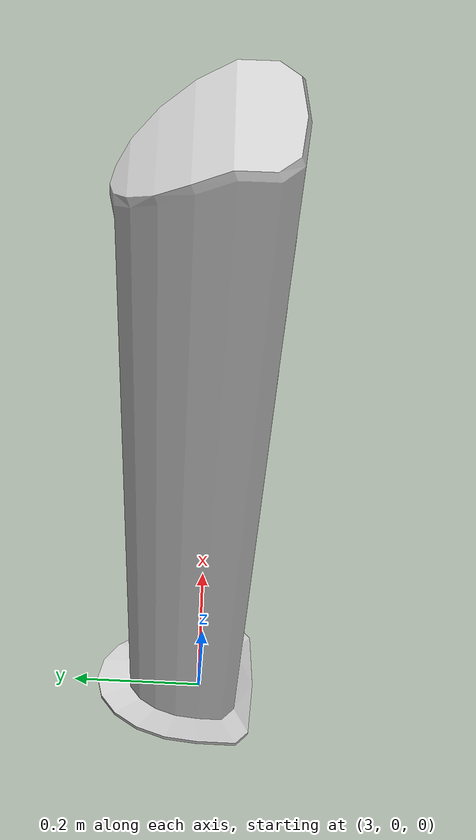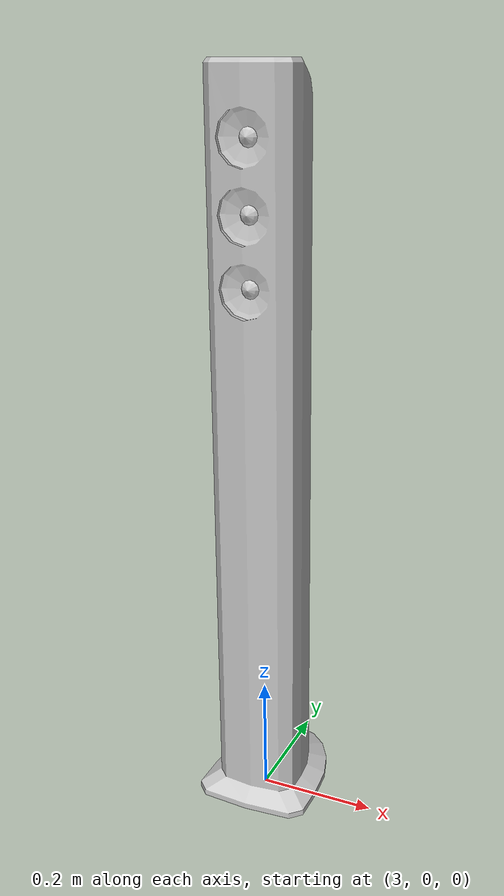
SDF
<sdf version="1.4">
	<model name="speaker">
		<link name="link">
			<visual name="mesh">
				<geometry>
					<mesh>
						<uri>model://meshes/speaker.dae</uri>
					</mesh>
				</geometry>
			</visual>
			<collision name="collider">
				<pose>0 0 0 0 0 0</pose>
				<geometry>
					<mesh>
						<uri>model://meshes/speaker_collision.stl</uri>
					</mesh>
				</geometry>
			</collision>
		</link>
	</model>
</sdf>
